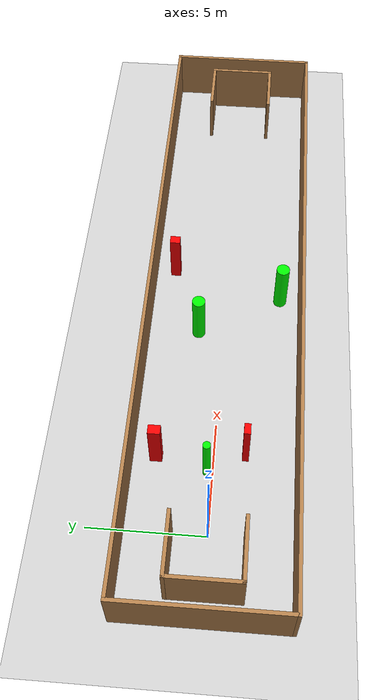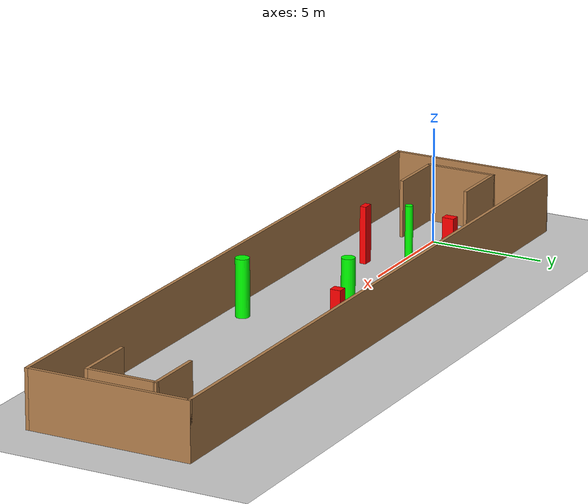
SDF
<sdf version="1.7">
 <world name="default">
  <light name="sun" type="directional">
   <pose>0 0 10 0 -0 0</pose>
   <diffuse>0.8 0.8 0.8 1</diffuse>
   <specular>0.2 0.2 0.2 1</specular>
   <attenuation>
    <range>1000</range>
    <constant>0.9</constant>
    <linear>0.01</linear>
    <quadratic>0.001</quadratic>
   </attenuation>
   <direction>-0.5 0.1 -0.9</direction>
   <spot><inner_angle>0</inner_angle><outer_angle>0</outer_angle><falloff>0</falloff></spot>
  </light>
  <model name="ground_plane">
   <static>1</static>
   <link name="link">
    <collision name="collision">
     <geometry><plane><normal>0 0 1</normal><size>100 100</size></plane></geometry>
     <surface>
      <contact><collide_bitmask>65535</collide_bitmask></contact>
      <friction><ode><mu>100</mu><mu2>50</mu2></ode></friction>
     </surface>
    </collision>
    <visual name="visual">
     <cast_shadows>0</cast_shadows>
     <geometry><plane><normal>0 0 1</normal><size>100 100</size></plane></geometry>
     <material>
      <script><uri>file://media/materials/scripts/gazebo.material</uri><name>Gazebo/Grey</name></script>
     </material>
    </visual>
   </link>
  </model>
  <gravity>0 0 -9.8</gravity>
  <magnetic_field>6e-06 2.3e-05 -4.2e-05</magnetic_field>
  <atmosphere type="adiabatic"/>
  <physics type="ode">
   <max_step_size>0.001</max_step_size>
   <real_time_factor>1</real_time_factor>
   <real_time_update_rate>1000</real_time_update_rate>
  </physics>
  <scene><ambient>0.4 0.4 0.4 1</ambient><background>0.7 0.7 0.7 1</background><shadows>1</shadows></scene>
  <spherical_coordinates>
   <surface_model>EARTH_WGS84</surface_model>
   <latitude_deg>0</latitude_deg>
   <longitude_deg>0</longitude_deg>
   <elevation>0</elevation>
   <heading_deg>0</heading_deg>
  </spherical_coordinates>
  <model name="my_base_walls">
   <link name="Wall_0">
    <collision name="Wall_0_Collision">
     <geometry><box><size>7.15 0.15 2.5</size></box></geometry>
     <pose>0 0 1.25 0 -0 0</pose>
    </collision>
    <visual name="Wall_0_Visual">
     <pose>0 0 1.25 0 -0 0</pose>
     <geometry><box><size>7.15 0.15 2.5</size></box></geometry>
     <material>
      <script><uri>file://media/materials/scripts/gazebo.material</uri><name>Gazebo/Wood</name></script>
      <ambient>1 1 1 1</ambient>
     </material>
     <meta><layer>0</layer></meta>
    </visual>
    <pose>-15 0 0 0 -0 1.5708</pose>
   </link>
   <link name="Wall_10">
    <collision name="Wall_10_Collision">
     <geometry><box><size>2.65 0.15 2.5</size></box></geometry>
     <pose>0 0 1.25 0 -0 0</pose>
    </collision>
    <visual name="Wall_10_Visual">
     <pose>0 0 1.25 0 -0 0</pose>
     <geometry><box><size>2.65 0.15 2.5</size></box></geometry>
     <material>
      <script><uri>file://media/materials/scripts/gazebo.material</uri><name>Gazebo/Wood</name></script>
      <ambient>1 1 1 1</ambient>
     </material>
     <meta><layer>0</layer></meta>
    </visual>
    <pose>-12.75 -1.5 0 0 -0 0</pose>
   </link>
   <link name="Wall_12">
    <collision name="Wall_12_Collision">
     <geometry><box><size>2.65 0.15 2.5</size></box></geometry>
     <pose>0 0 1.25 0 -0 0</pose>
    </collision>
    <visual name="Wall_12_Visual">
     <pose>0 0 1.25 0 -0 0</pose>
     <geometry><box><size>2.65 0.15 2.5</size></box></geometry>
     <material>
      <script><uri>file://media/materials/scripts/gazebo.material</uri><name>Gazebo/Wood</name></script>
      <ambient>1 1 1 1</ambient>
     </material>
     <meta><layer>0</layer></meta>
    </visual>
    <pose>-12.75 1.5 0 0 -0 0</pose>
   </link>
   <link name="Wall_14">
    <collision name="Wall_14_Collision">
     <geometry><box><size>3.15 0.15 2.5</size></box></geometry>
     <pose>0 0 1.25 0 -0 0</pose>
    </collision>
    <visual name="Wall_14_Visual">
     <pose>0 0 1.25 0 -0 0</pose>
     <geometry><box><size>3.15 0.15 2.5</size></box></geometry>
     <material>
      <script><uri>file://media/materials/scripts/gazebo.material</uri><name>Gazebo/Wood</name></script>
      <ambient>1 1 1 1</ambient>
     </material>
     <meta><layer>0</layer></meta>
    </visual>
    <pose>14 0 0 0 -0 -1.5708</pose>
   </link>
   <link name="Wall_15">
    <collision name="Wall_15_Collision">
     <geometry><box><size>2.65 0.15 2.5</size></box></geometry>
     <pose>0 0 1.25 0 -0 0</pose>
    </collision>
    <visual name="Wall_15_Visual">
     <pose>0 0 1.25 0 -0 0</pose>
     <geometry><box><size>2.65 0.15 2.5</size></box></geometry>
     <material>
      <script><uri>file://media/materials/scripts/gazebo.material</uri><name>Gazebo/Wood</name></script>
      <ambient>1 1 1 1</ambient>
     </material>
     <meta><layer>0</layer></meta>
    </visual>
    <pose>12.75 -1.5 0 0 -0 3.14159</pose>
   </link>
   <link name="Wall_17">
    <collision name="Wall_17_Collision">
     <geometry><box><size>2.65 0.15 2.5</size></box></geometry>
     <pose>0 0 1.25 0 -0 0</pose>
    </collision>
    <visual name="Wall_17_Visual">
     <pose>0 0 1.25 0 -0 0</pose>
     <geometry><box><size>2.65 0.15 2.5</size></box></geometry>
     <material>
      <script><uri>file://media/materials/scripts/gazebo.material</uri><name>Gazebo/Wood</name></script>
      <ambient>1 1 1 1</ambient>
     </material>
     <meta><layer>0</layer></meta>
    </visual>
    <pose>12.75 1.5 0 0 -0 3.14159</pose>
   </link>
   <link name="Wall_2">
    <collision name="Wall_2_Collision">
     <geometry><box><size>30.15 0.15 2.5</size></box></geometry>
     <pose>0 0 1.25 0 -0 0</pose>
    </collision>
    <visual name="Wall_2_Visual">
     <pose>0 0 1.25 0 -0 0</pose>
     <geometry><box><size>30.15 0.15 2.5</size></box></geometry>
     <material>
      <script><uri>file://media/materials/scripts/gazebo.material</uri><name>Gazebo/Wood</name></script>
      <ambient>1 1 1 1</ambient>
     </material>
     <meta><layer>0</layer></meta>
    </visual>
    <pose>-0 -3.5 0 0 -0 0</pose>
   </link>
   <link name="Wall_4">
    <collision name="Wall_4_Collision">
     <geometry><box><size>30.15 0.15 2.5</size></box></geometry>
     <pose>0 0 1.25 0 -0 0</pose>
    </collision>
    <visual name="Wall_4_Visual">
     <pose>0 0 1.25 0 -0 0</pose>
     <geometry><box><size>30.15 0.15 2.5</size></box></geometry>
     <material>
      <script><uri>file://media/materials/scripts/gazebo.material</uri><name>Gazebo/Wood</name></script>
      <ambient>1 1 1 1</ambient>
     </material>
     <meta><layer>0</layer></meta>
    </visual>
    <pose>-0 3.5 0 0 -0 0</pose>
   </link>
   <link name="Wall_6">
    <collision name="Wall_6_Collision">
     <geometry><box><size>7.15 0.15 2.5</size></box></geometry>
     <pose>0 0 1.25 0 -0 0</pose>
    </collision>
    <visual name="Wall_6_Visual">
     <pose>0 0 1.25 0 -0 0</pose>
     <geometry><box><size>7.15 0.15 2.5</size></box></geometry>
     <material>
      <script><uri>file://media/materials/scripts/gazebo.material</uri><name>Gazebo/Wood</name></script>
      <ambient>1 1 1 1</ambient>
     </material>
     <meta><layer>0</layer></meta>
    </visual>
    <pose>15 0 0 0 -0 -1.5708</pose>
   </link>
   <link name="Wall_9">
    <collision name="Wall_9_Collision">
     <geometry><box><size>3.15 0.15 2.5</size></box></geometry>
     <pose>0 0 1.25 0 -0 0</pose>
    </collision>
    <visual name="Wall_9_Visual">
     <pose>0 0 1.25 0 -0 0</pose>
     <geometry><box><size>3.15 0.15 2.5</size></box></geometry>
     <material>
      <script><uri>file://media/materials/scripts/gazebo.material</uri><name>Gazebo/Wood</name></script>
      <ambient>1 1 1 1</ambient>
     </material>
     <meta><layer>0</layer></meta>
    </visual>
    <pose>-14 0 0 0 -0 -1.5708</pose>
   </link>
   <static>1</static>
   <pose>11.5 0 0 0 -0 0</pose>
  </model>
  <model name="cylinder1">
   <static>1</static>
   <link name="link">
    <inertial>
     <mass>1</mass>
     <inertia><ixx>0.5</ixx><ixy>0</ixy><ixz>0</ixz><iyy>0.5</iyy><iyz>0</iyz><izz>1</izz></inertia>
    </inertial>
    <collision name="collision">
     <geometry><cylinder><radius>0.1673345616352278</radius><length>2.5</length></cylinder></geometry>
    </collision>
    <visual name="visual">
     <geometry><cylinder><radius>0.1673345616352278</radius><length>2.5</length></cylinder></geometry>
     <material>
      <ambient>0 1 0 1</ambient>
      <diffuse>0 1 0 1</diffuse>
      <specular>0.1 0.1 0.1 1</specular>
      <emissive>0 0 0 0</emissive>
     </material>
    </visual>
   </link>
   <pose>2.7968654029339017 0.27273411035707973 1.25 0 0 0</pose>
  </model>
  <model name="cylinder2">
   <static>1</static>
   <link name="link">
    <inertial>
     <mass>1</mass>
     <inertia><ixx>0.5</ixx><ixy>0</ixy><ixz>0</ixz><iyy>0.5</iyy><iyz>0</iyz><izz>1</izz></inertia>
    </inertial>
    <collision name="collision">
     <geometry><cylinder><radius>0.299750571464269</radius><length>2.5</length></cylinder></geometry>
    </collision>
    <visual name="visual">
     <geometry><cylinder><radius>0.299750571464269</radius><length>2.5</length></cylinder></geometry>
     <material>
      <ambient>0 1 0 1</ambient>
      <diffuse>0 1 0 1</diffuse>
      <specular>0.1 0.1 0.1 1</specular>
      <emissive>0 0 0 0</emissive>
     </material>
    </visual>
   </link>
   <pose>11.83323298678013 -2.5583298027638683 1.25 0 0 0</pose>
  </model>
  <model name="cylinder3">
   <static>1</static>
   <link name="link">
    <inertial>
     <mass>1</mass>
     <inertia><ixx>0.5</ixx><ixy>0</ixy><ixz>0</ixz><iyy>0.5</iyy><iyz>0</iyz><izz>1</izz></inertia>
    </inertial>
    <collision name="collision">
     <geometry><cylinder><radius>0.291645704149972</radius><length>2.5</length></cylinder></geometry>
    </collision>
    <visual name="visual">
     <geometry><cylinder><radius>0.291645704149972</radius><length>2.5</length></cylinder></geometry>
     <material>
      <ambient>0 1 0 1</ambient>
      <diffuse>0 1 0 1</diffuse>
      <specular>0.1 0.1 0.1 1</specular>
      <emissive>0 0 0 0</emissive>
     </material>
    </visual>
   </link>
   <pose>9.772909892260413 1.1455969882533843 1.25 0 0 0</pose>
  </model>
  <model name="box1">
   <static>1</static>
   <link name="link">
    <inertial>
     <mass>1</mass>
     <inertia><ixx>0.083</ixx><ixy>0</ixy><ixz>0</ixz><iyy>0.083</iyy><iyz>0</iyz><izz>0.083</izz></inertia>
    </inertial>
    <collision name="collision">
     <geometry><box><size>0.3973344048982297 0.5186761852414964 2.5</size></box></geometry>
    </collision>
    <visual name="visual">
     <geometry><box><size>0.3973344048982297 0.5186761852414964 2.5</size></box></geometry>
     <material>
      <ambient>1 0 0 1</ambient>
      <diffuse>1 0 0 1</diffuse>
      <specular>0.1 0.1 0.1 1</specular>
      <emissive>0 0 0 0</emissive>
     </material>
    </visual>
    <sensor name="my_contact" type="contact">
     <contact><collision>box_collision</collision><topic>__default_topic__</topic></contact>
    </sensor>
   </link>
   <pose>3.327621582902685 2.437422140966425 1.25 0 0 0</pose>
  </model>
  <model name="box2">
   <static>1</static>
   <link name="link">
    <inertial>
     <mass>1</mass>
     <inertia><ixx>0.083</ixx><ixy>0</ixy><ixz>0</ixz><iyy>0.083</iyy><iyz>0</iyz><izz>0.083</izz></inertia>
    </inertial>
    <collision name="collision">
     <geometry><box><size>0.4712679682514283 0.27460094997297424 2.5</size></box></geometry>
    </collision>
    <visual name="visual">
     <geometry><box><size>0.4712679682514283 0.27460094997297424 2.5</size></box></geometry>
     <material>
      <ambient>1 0 0 1</ambient>
      <diffuse>1 0 0 1</diffuse>
      <specular>0.1 0.1 0.1 1</specular>
      <emissive>0 0 0 0</emissive>
     </material>
    </visual>
    <sensor name="my_contact" type="contact">
     <contact><collision>box_collision</collision><topic>__default_topic__</topic></contact>
    </sensor>
   </link>
   <pose>3.6512370494058395 -1.3191625624504466 1.25 0 0 0</pose>
  </model>
  <model name="box3">
   <static>1</static>
   <link name="link">
    <inertial>
     <mass>1</mass>
     <inertia><ixx>0.083</ixx><ixy>0</ixy><ixz>0</ixz><iyy>0.083</iyy><iyz>0</iyz><izz>0.083</izz></inertia>
    </inertial>
    <collision name="collision">
     <geometry><box><size>0.39440502600019545 0.4616661726383512 2.5</size></box></geometry>
    </collision>
    <visual name="visual">
     <geometry><box><size>0.39440502600019545 0.4616661726383512 2.5</size></box></geometry>
     <material>
      <ambient>1 0 0 1</ambient>
      <diffuse>1 0 0 1</diffuse>
      <specular>0.1 0.1 0.1 1</specular>
      <emissive>0 0 0 0</emissive>
     </material>
    </visual>
    <sensor name="my_contact" type="contact">
     <contact><collision>box_collision</collision><topic>__default_topic__</topic></contact>
    </sensor>
   </link>
   <pose>13.236267992757652 2.5242557856916976 1.25 0 0 0</pose>
  </model>
 </world>
</sdf>
